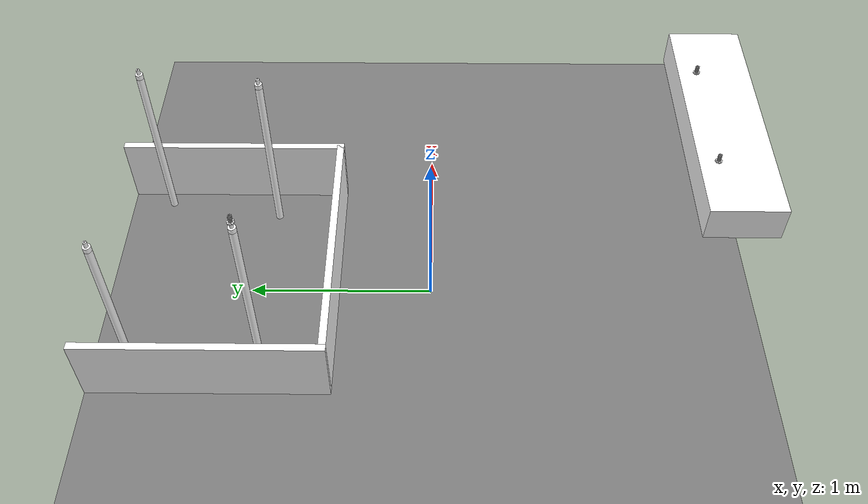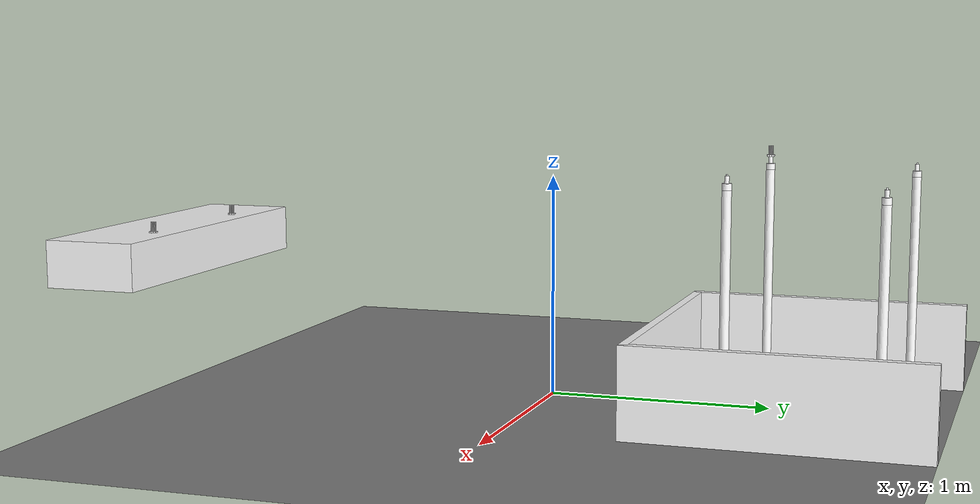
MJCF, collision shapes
<mujoco model="scene2_pre_cas">
    <compiler meshdir="../../meshes/pressure_casting" angle="radian" eulerseq="zyx"/>

    <asset>
        <texture type="2d" name="groundplane" builtin="checker" mark="edge" rgb1="0.5 0.5 0.5" rgb2="0.5 0.5 0.5"
                markrgb="0.3 0.3 0.3" width="300" height="300"/>
        <material name="groundplane" texture="groundplane" texuniform="true" texrepeat="2 2"/>
        <material name="red_light" rgba="1.0 0.0 0.0 1.0" emission="1.0" />
        <material name="green_light" rgba="0.0 1.0 0.0 1.0" emission="1.0"/>
        <material name="yellow_light" rgba="1.0 1.0 0.0 1.0" emission="1.0" />
        <mesh name="M14bolt" file="bolt.obj" />
        <mesh name="bolt_base" file="bolt_assem.obj" />
        <mesh name="table" file="table.stl" />

    </asset>

    <visual>
        <headlight diffuse="0.6 0.6 0.6" ambient="0.3 0.3 0.3" specular="0 0 0"/>
        <rgba haze="0.15 0.25 0.35 1"/>
        <global azimuth="90" elevation="-20"/>
        <quality shadowsize="8192"/>
    </visual>
    <worldbody>
        <light pos="2.058333333 1.275 3" dir="0 0 -1" directional="false"   diffuse=".2 .2 .2"/>
        <light pos="-2.058333333 1.275 3" dir="0 0 -1" directional="false"  diffuse=".2 .2 .2"/>
        <light pos="2.058333333 -1.275 3" dir="0 0 -1" directional="false"  diffuse=".2 .2 .2"/>
        <light pos="-2.058333333 -1.275 3" dir="0 0 -1" directional="false" diffuse=".2 .2 .2"/>
        <light pos="-.225 1.5 3" dir="0 0 -1" directional="false"           diffuse=".2 .2 .2"/>
        <geom name="ground" pos="0 0 0" size="1.98 1.79 0.005" type="plane" material="groundplane" condim="1"/>

        <body name="fence">
            <geom name="fence_west" size="0.02 0.64 0.2" pos="-0.65 1.15 0.2" euler="0 0 0" type="box" rgba="1 1 1 1"/>
            <geom name="fence_east" size="0.02 0.64 0.2" pos=" 0.75 1.15 0.2" euler="0 0 0" type="box" rgba="1 1 1 1"/>
            <geom name="fence_south" size="0.7 0.02 0.2" pos="0.06 0.53 0.2" euler="0 0 0" type="box" rgba="1 1 1 1"/>
        </body>

        <body name="bolt_place_1" pos="-0.4345 0.9055 0.51">
            <geom name="holder_1" size="0.020 0.51 " pos="0 0 0" euler="0 0 0" type="cylinder" rgba="1 1 1 1"/>
            <geom name="base_1" size="0.020 0.014 " pos="0 0 0.524" euler="0 0 0" type="cylinder" rgba="1 1 1 0"/>
            <body name="bolt_mag_1">
                <geom name="middle_1" size="0.0094 0.018" pos="0 0 0.55" euler="0 0 0" type="cylinder" rgba="1 1 1 0" />
                <geom name="pin_1" size="0.0032 0.00575" pos="0 0 0.57" euler="0 0 0" type="cylinder" rgba="1 1 1 0" />
            </body>
            <geom type="mesh" mesh="bolt_base" contype="0" conaffinity="0" pos="0 0 0.51" euler="0 -1.57 0" rgba="1 1 1 1"/>
        </body>
        <body name="bolt_place_2" pos="0.5545 0.9055 0.51">
            <geom name="holder_2" size="0.020 0.51 " pos="0 0 0" euler="0 0 0" type="cylinder" rgba="1 1 1 1"/>
            <geom name="base_2" size="0.020 0.014 " pos="0 0 0.524" euler="0 0 0" type="cylinder" rgba="1 1 1 0"/>
            <body name="bolt_mag_2">
                <geom name="middle_2" size="0.0094 0.018" pos="0 0 0.55" euler="0 0 0" type="cylinder" rgba="1 1 1 0" />
                <geom name="pin_2" size="0.0032 0.00575" pos="0 0 0.57" euler="0 0 0" type="cylinder" rgba="1 1 1 0" />
            </body>
            <geom type="mesh" mesh="bolt_base" contype="0" conaffinity="0" pos="0 0 0.51" euler="0 -1.57 0" rgba="1 1 1 1"/>
        </body>
        <body name="bolt_place_3" pos="-0.5345 1.5545 0.485">
            <geom name="holder_3" size="0.020 0.51 " pos="0 0 0" euler="0 0 0" type="cylinder" rgba="1 1 1 1"/>
            <geom name="base_3" size="0.020 0.014 " pos="0 0 0.524" euler="0 0 0" type="cylinder" rgba="1 1 1 0"/>
            <body name="bolt_mag_3">
                <geom name="middle_3" size="0.0094 0.018" pos="0 0 0.55" euler="0 0 0" type="cylinder" rgba="1 1 1 0" />
                <geom name="pin_3" size="0.0032 0.00575" pos="0 0 0.57" euler="0 0 0" type="cylinder" rgba="1 1 1 0" />
            </body>
            <geom type="mesh" mesh="bolt_base" contype="0" conaffinity="0" pos="0 0 0.51" euler="0 -1.57 0" rgba="1 1 1 1"/>
        </body>
        <body name="bolt_place_4" pos="0.6545 1.5545 0.485">
            <geom name="holder_4" size="0.020 0.51 " pos="0 0 0" euler="0 0 0" type="cylinder" rgba="1 1 1 1"/>
            <geom name="base_4" size="0.020 0.014 " pos="0 0 0.524" euler="0 0 0" type="cylinder" rgba="1 1 1 0"/>
            <body name="bolt_mag_4">
                <geom name="middle_4" size="0.0094 0.018" pos="0 0 0.55" euler="0 0 0" type="cylinder" rgba="1 1 1 0" />
                <geom name="pin_4" size="0.0032 0.00575" pos="0 0 0.57" euler="0 0 0" type="cylinder" rgba="1 1 1 0" />
            </body>
            <geom type="mesh" mesh="bolt_base" contype="0" conaffinity="0" pos="0 0 0.51" euler="0 -1.57 0" rgba="1 1 1 1"/>
        </body>

        <body name="table" pos="0.6 -1.59 0.6865" euler="3.14 3.14 0">
            <geom type="mesh" mesh="table" contype="0" conaffinity="0" rgba="1 1 1 1"/>
            <geom type="box" pos="0 0 -0.015" size="0.7 0.2 0.1" rgba="1 1 1 0"/>
        </body>

        <body name="M14bolt_1" pos="0.950 -1.492 0.799" euler="0 0 0">
            <joint type="free"/>
            <geom type="mesh" mesh="M14bolt" contype="0" conaffinity="0" rgba="1 1 1 1"  />
            <geom name="bolt_1_01"  pos="0 0.008645 0.0274" size="0.00244 0.02 "  euler="0 0 0" type="cylinder" rgba="1 1 1 0"/>
            <geom name="bolt_1_02"  pos="0.008645 0 0.0274" size="0.00244 0.02 "  euler="0 0 0" type="cylinder" rgba="1 1 1 0"/>
            <geom name="bolt_1_03"  pos="0 -0.008645 0.0274" size="0.00244 0.02 "  euler="0 0 0" type="cylinder" rgba="1 1 1 0"/>
            <geom name="bolt_1_04"  pos="-0.008645 0 0.0274" size="0.00244 0.02 "  euler="0 0 0" type="cylinder" rgba="1 1 1 0"/>
            <geom name="bolt_1_05"  pos="0.006112 -0.006112 0.0274" size="0.00244 0.02 "  euler="0 0 0" type="cylinder" rgba="1 1 1 0"/>
            <geom name="bolt_1_06"  pos="-0.006112 0.006112 0.0274" size="0.00244 0.02 "  euler="0 0 0" type="cylinder" rgba="1 1 1 0"/>
            <geom name="bolt_1_07"  pos="-0.006112 -0.006112 0.0274" size="0.00244 0.02 "  euler="0 0 0" type="cylinder" rgba="1 1 1 0"/>
            <geom name="bolt_1_08"  pos="0.006112 0.006112 0.0274" size="0.00244 0.02 "  euler="0 0 0" type="cylinder" rgba="1 1 1 0"/>

            <geom name="bolt_1_09"  pos="0 0.0135 0.0037" size="0.0055 0.0037 "  euler="0 0 0" type="cylinder" rgba="1 1 1 0"/>
            <geom name="bolt_1_10"  pos="0.0135 0 0.0037" size="0.0055 0.0037 "  euler="0 0 0" type="cylinder" rgba="1 1 1 0"/>
            <geom name="bolt_1_11"  pos="0 -0.0135 0.0037" size="0.0055 0.0037 "  euler="0 0 0" type="cylinder" rgba="1 1 1 0"/>
            <geom name="bolt_1_12"  pos="-0.0135 0 0.0037" size="0.0055 0.0037 "  euler="0 0 0" type="cylinder" rgba="1 1 1 0"/>

            <geom name="bolt_1_13"  pos="0.00954 0.00954 0.0037" size="0.0055 0.0037 "  euler="0 0 0" type="cylinder" rgba="1 1 1 0"/>
            <geom name="bolt_1_14"  pos="-0.00954 0.00954 0.0037" size="0.0055 0.0037 "  euler="0 0 0" type="cylinder" rgba="1 1 1 0"/>
            <geom name="bolt_1_15"  pos="0.00954 -0.00954 0.0037" size="0.0055 0.0037 "  euler="0 0 0" type="cylinder" rgba="1 1 1 0"/>
            <geom name="bolt_1_16"  pos="-0.00954 -0.00954 0.0037" size="0.0055 0.0037 "  euler="0 0 0" type="cylinder" rgba="1 1 1 0"/>

        </body>

        <body name="M14bolt_test" pos="-0.4345 0.9055 1.08" euler="0 0 0">
            <joint type="free"/>
            <geom type="mesh" mesh="M14bolt" contype="0" conaffinity="0" rgba="1 1 1 1"  />
            <geom name="bolt_test_01"  pos="0 0.008645 0.0274" size="0.00244 0.02 "  euler="0 0 0" type="cylinder" rgba="1 1 1 0"/>
            <geom name="bolt_test_02"  pos="0.008645 0 0.0274" size="0.00244 0.02 "  euler="0 0 0" type="cylinder" rgba="1 1 1 0"/>
            <geom name="bolt_test_03"  pos="0 -0.008645 0.0274" size="0.00244 0.02 "  euler="0 0 0" type="cylinder" rgba="1 1 1 0"/>
            <geom name="bolt_test_04"  pos="-0.008645 0 0.0274" size="0.00244 0.02 "  euler="0 0 0" type="cylinder" rgba="1 1 1 0"/>
            <geom name="bolt_test_05"  pos="0.006112 -0.006112 0.0274" size="0.00244 0.02 "  euler="0 0 0" type="cylinder" rgba="1 1 1 0"/>
            <geom name="bolt_test_06"  pos="-0.006112 0.006112 0.0274" size="0.00244 0.02 "  euler="0 0 0" type="cylinder" rgba="1 1 1 0"/>
            <geom name="bolt_test_07"  pos="-0.006112 -0.006112 0.0274" size="0.00244 0.02 "  euler="0 0 0" type="cylinder" rgba="1 1 1 0"/>
            <geom name="bolt_test_08"  pos="0.006112 0.006112 0.0274" size="0.00244 0.02 "  euler="0 0 0" type="cylinder" rgba="1 1 1 0"/>

            <geom name="bolt_test_09"  pos="0 0.0135 0.0037" size="0.0055 0.0037 "  euler="0 0 0" type="cylinder" rgba="1 1 1 0"/>
            <geom name="bolt_test_10"  pos="0.0135 0 0.0037" size="0.0055 0.0037 "  euler="0 0 0" type="cylinder" rgba="1 1 1 0"/>
            <geom name="bolt_test_11"  pos="0 -0.0135 0.0037" size="0.0055 0.0037 "  euler="0 0 0" type="cylinder" rgba="1 1 1 0"/>
            <geom name="bolt_test_12"  pos="-0.0135 0 0.0037" size="0.0055 0.0037 "  euler="0 0 0" type="cylinder" rgba="1 1 1 0"/>

            <geom name="bolt_test_13"  pos="0.00954 0.00954 0.0037" size="0.0055 0.0037 "  euler="0 0 0" type="cylinder" rgba="1 1 1 0"/>
            <geom name="bolt_test_14"  pos="-0.00954 0.00954 0.0037" size="0.0055 0.0037 "  euler="0 0 0" type="cylinder" rgba="1 1 1 0"/>
            <geom name="bolt_test_15"  pos="0.00954 -0.00954 0.0037" size="0.0055 0.0037 "  euler="0 0 0" type="cylinder" rgba="1 1 1 0"/>
            <geom name="bolt_test_16"  pos="-0.00954 -0.00954 0.0037" size="0.0055 0.0037 "  euler="0 0 0" type="cylinder" rgba="1 1 1 0"/>
        </body>

        <body name="M14bolt_2" pos="0.250 -1.492 0.799" euler="0 0 0">
            <joint type="free"/>
            <geom type="mesh" mesh="M14bolt" contype="0" conaffinity="0" rgba="1 1 1 1"  />
            <geom name="bolt_2_01"  pos="0 0.008645 0.0274" size="0.00244 0.02 "  euler="0 0 0" type="cylinder" rgba="1 1 1 0"/>
            <geom name="bolt_2_02"  pos="0.008645 0 0.0274" size="0.00244 0.02 "  euler="0 0 0" type="cylinder" rgba="1 1 1 0"/>
            <geom name="bolt_2_03"  pos="0 -0.008645 0.0274" size="0.00244 0.02 "  euler="0 0 0" type="cylinder" rgba="1 1 1 0"/>
            <geom name="bolt_2_04"  pos="-0.008645 0 0.0274" size="0.00244 0.02 "  euler="0 0 0" type="cylinder" rgba="1 1 1 0"/>
            <geom name="bolt_2_05"  pos="0.006112 -0.006112 0.0274" size="0.00244 0.02 "  euler="0 0 0" type="cylinder" rgba="1 1 1 0"/>
            <geom name="bolt_2_06"  pos="-0.006112 0.006112 0.0274" size="0.00244 0.02 "  euler="0 0 0" type="cylinder" rgba="1 1 1 0"/>
            <geom name="bolt_2_07"  pos="-0.006112 -0.006112 0.0274" size="0.00244 0.02 "  euler="0 0 0" type="cylinder" rgba="1 1 1 0"/>
            <geom name="bolt_2_08"  pos="0.006112 0.006112 0.0274" size="0.00244 0.02 "  euler="0 0 0" type="cylinder" rgba="1 1 1 0"/>

            <geom name="bolt_2_09"  pos="0 0.0135 0.0037" size="0.0055 0.0037 "  euler="0 0 0" type="cylinder" rgba="1 1 1 0"/>
            <geom name="bolt_2_10"  pos="0.0135 0 0.0037" size="0.0055 0.0037 "  euler="0 0 0" type="cylinder" rgba="1 1 1 0"/>
            <geom name="bolt_2_11"  pos="0 -0.0135 0.0037" size="0.0055 0.0037 "  euler="0 0 0" type="cylinder" rgba="1 1 1 0"/>
            <geom name="bolt_2_12"  pos="-0.0135 0 0.0037" size="0.0055 0.0037 "  euler="0 0 0" type="cylinder" rgba="1 1 1 0"/>

            <geom name="bolt_2_13"  pos="0.00954 0.00954 0.0037" size="0.0055 0.0037 "  euler="0 0 0" type="cylinder" rgba="1 1 1 0"/>
            <geom name="bolt_2_14"  pos="-0.00954 0.00954 0.0037" size="0.0055 0.0037 "  euler="0 0 0" type="cylinder" rgba="1 1 1 0"/>
            <geom name="bolt_2_15"  pos="0.00954 -0.00954 0.0037" size="0.0055 0.0037 "  euler="0 0 0" type="cylinder" rgba="1 1 1 0"/>
            <geom name="bolt_2_16"  pos="-0.00954 -0.00954 0.0037" size="0.0055 0.0037 "  euler="0 0 0" type="cylinder" rgba="1 1 1 0"/>
        </body>

    </worldbody>
    <actuator>
    <adhesion name="bolt_mag_1" body="bolt_mag_1" ctrlrange="5 10" gain="5"/>
    <adhesion name="bolt_mag_2" body="bolt_mag_2" ctrlrange="5 10" gain="5"/>
    <adhesion name="bolt_mag_3" body="bolt_mag_3" ctrlrange="5 10" gain="5"/>
    <adhesion name="bolt_mag_4" body="bolt_mag_4" ctrlrange="5 10" gain="5"/>

    </actuator>

</mujoco>
